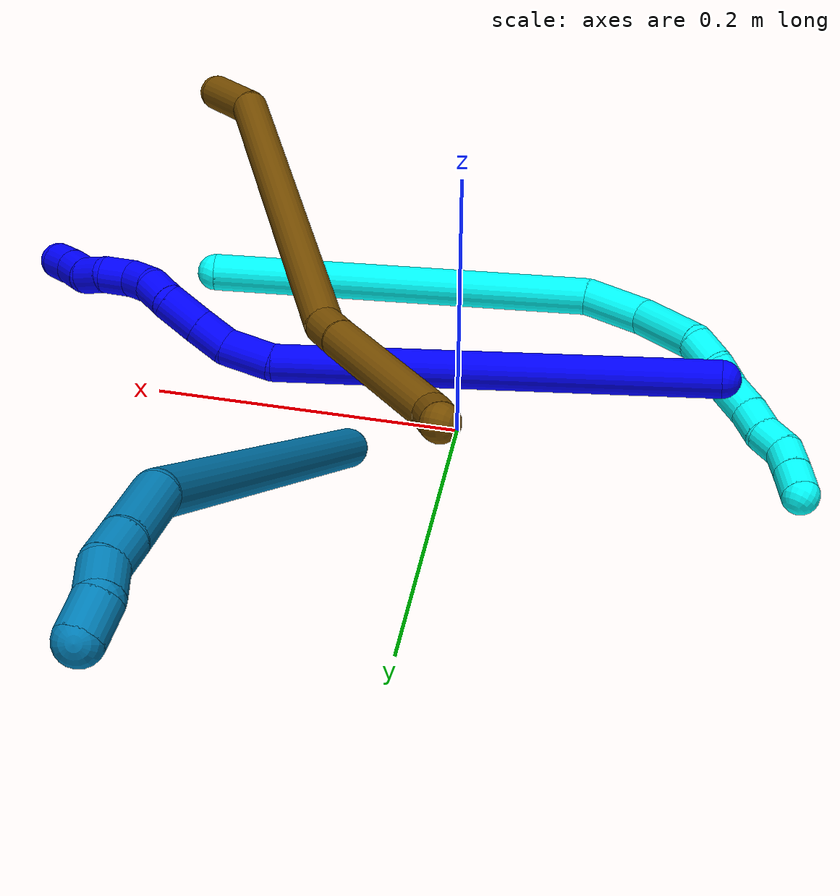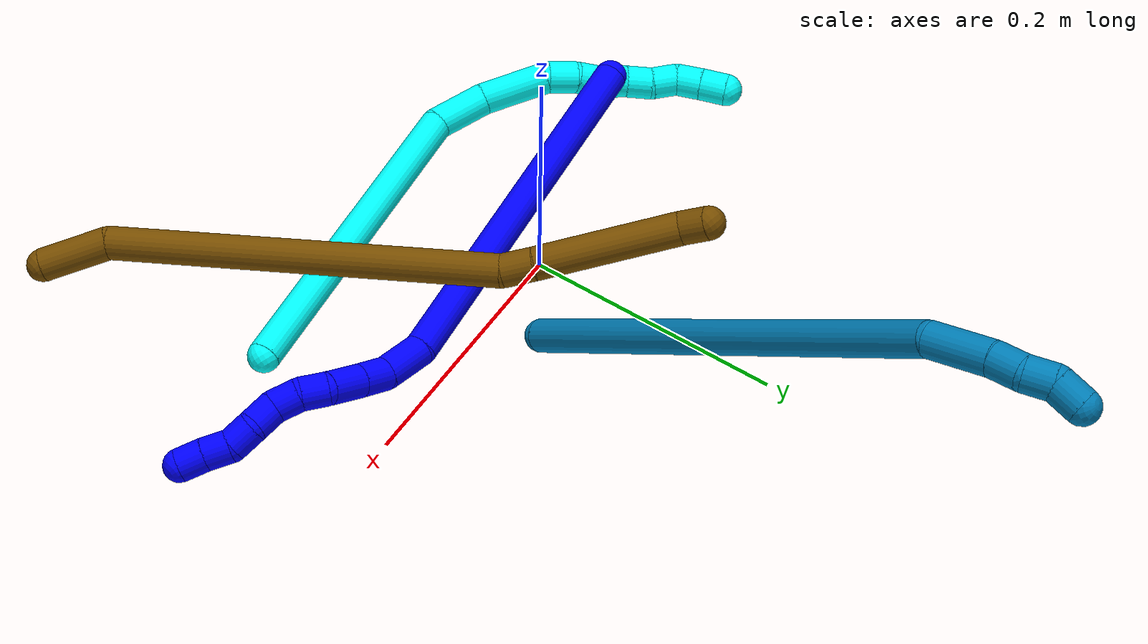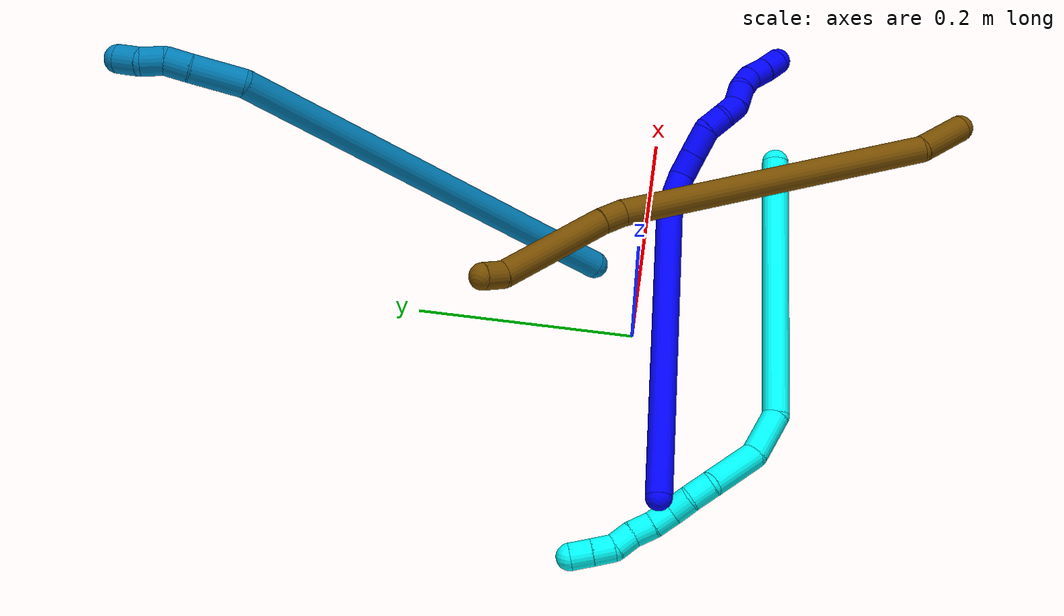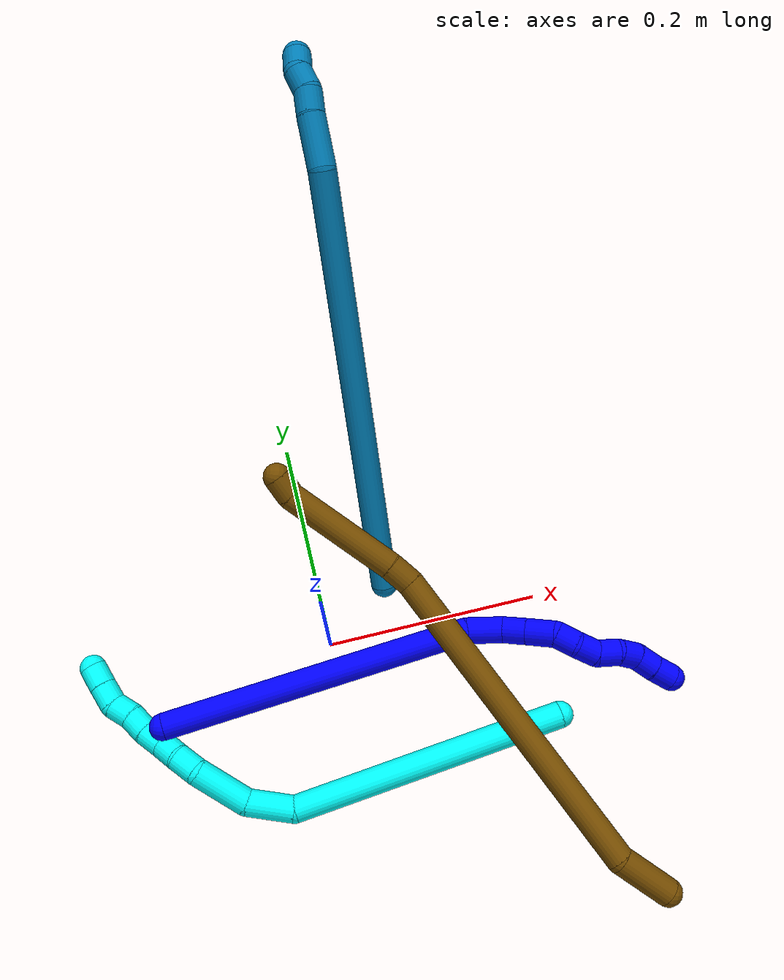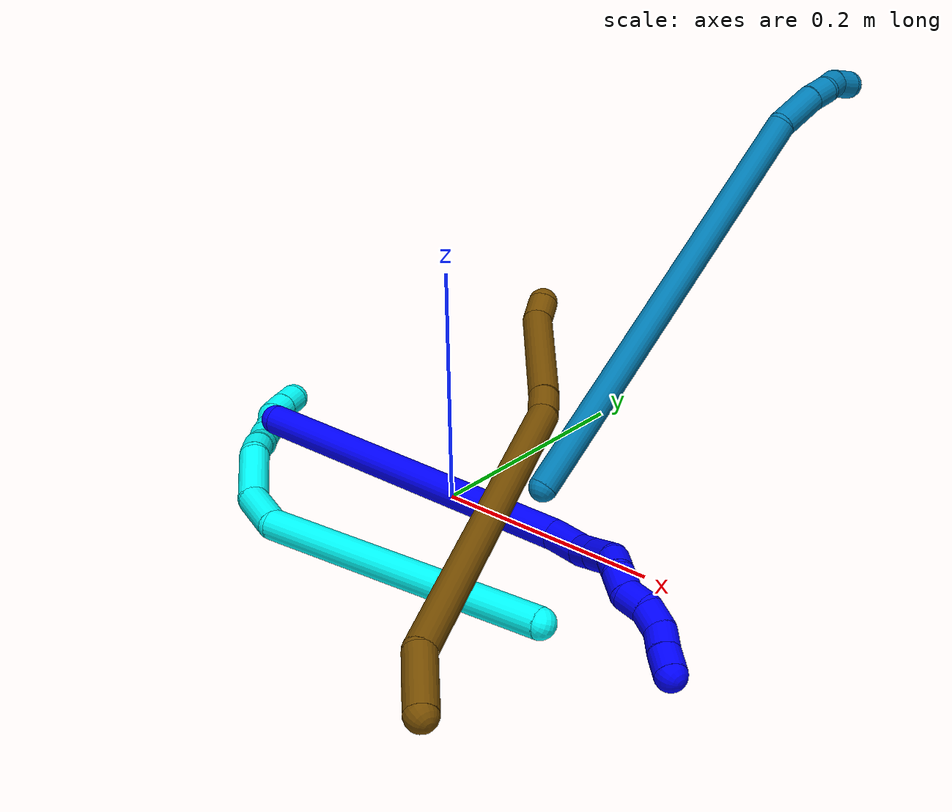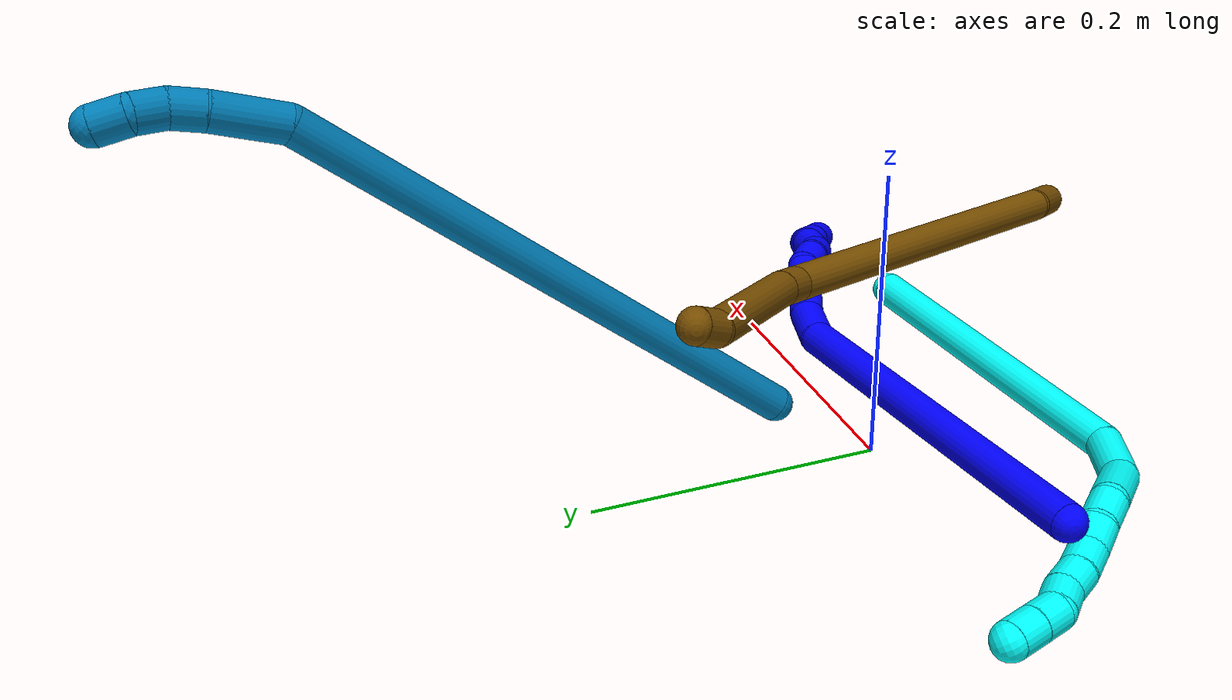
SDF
<sdf version="1.7">
 <world name="default">
  <model name="photoneo_s_sensor">
   <static>1</static>
   <pose>0 0 2 1.57079 1.57079 3.14159</pose>
   <link name="link">
    <inertial><mass>0.1</mass></inertial>
    <sensor name="sensor" type="depth">
     <update_rate>30</update_rate>
     <camera>
      <horizontal_fov>1.22</horizontal_fov>
      <image><width>1920</width><height>1200</height><format>B8G8R8</format></image>
      <clip><near>0.1</near><far>4</far></clip>
      <depth_camera><output>points</output></depth_camera>
     </camera>
     <plugin name="camera_plugin" filename="libgazebo_ros_depth_camera.so">
      <baseline>0.2</baseline>
      <alwaysOn>1</alwaysOn>
      <updateRate>0.0</updateRate>
      <cameraName>camera_ir</cameraName>
      <imageTopicName>/camera/color/image_raw</imageTopicName>
      <cameraInfoTopicName>/camera/color/camera_info</cameraInfoTopicName>
      <depthImageTopicName>/camera/depth/image_raw</depthImageTopicName>
      <depthImageCameraInfoTopicName>/camera/depth/camera_info</depthImageCameraInfoTopicName>
      <pointCloudTopicName>/camera/depth/points</pointCloudTopicName>
      <frameName>fr_optical</frameName>
      <pointCloudCutoff>0.1</pointCloudCutoff>
      <pointCloudCutoffMax>2.0</pointCloudCutoffMax>
      <distortionK1>0</distortionK1>
      <distortionK2>0</distortionK2>
      <distortionK3>0</distortionK3>
      <distortionT1>0</distortionT1>
      <distortionT2>0</distortionT2>
      <CxPrime>0</CxPrime>
      <Cx>0</Cx>
      <Cy>0</Cy>
      <focalLength>0</focalLength>
      <hackBaseline>0</hackBaseline>
     </plugin>
    </sensor>
   </link>
  </model>
  <model name="bin">
   <static>1</static>
   <link name="bottom">
    <collision name="collision-bottom">
     <pose>0 0 -0.01 0 -0 0</pose>
     <geometry><box><size>0.8 0.6 0.02</size></box></geometry>
     <surface>
      <friction><ode><mu>100</mu><mu2>100</mu2></ode></friction>
      <contact><collide_bitmask>65535</collide_bitmask></contact>
     </surface>
    </collision>
   </link>
   <link name="west_wall">
    <collision name="collision-west_wall">
     <pose>-0.41 0 0.1 0 -0 0</pose>
     <geometry><box><size>0.02 0.6 0.2</size></box></geometry>
     <surface>
      <friction><ode><mu>100</mu><mu2>100</mu2></ode></friction>
      <contact><collide_bitmask>65535</collide_bitmask></contact>
     </surface>
    </collision>
   </link>
   <link name="east_wall">
    <collision name="collision-east_wall">
     <pose>0.41 0 0.1 0 -0 0</pose>
     <geometry><box><size>0.02 0.6 0.2</size></box></geometry>
     <surface>
      <friction><ode><mu>100</mu><mu2>100</mu2></ode></friction>
      <contact><collide_bitmask>65535</collide_bitmask></contact>
     </surface>
    </collision>
   </link>
   <link name="south_wall">
    <collision name="collision-south_wall">
     <pose>0 -0.31 0.1 0 -0 0</pose>
     <geometry><box><size>0.8 0.02 0.2</size></box></geometry>
     <surface>
      <friction><ode><mu>100</mu><mu2>100</mu2></ode></friction>
      <contact><collide_bitmask>65535</collide_bitmask></contact>
     </surface>
    </collision>
   </link>
   <link name="north_wall">
    <collision name="collision-north_wall">
     <pose>0 0.31 0.1 0 -0 0</pose>
     <geometry><box><size>0.8 0.02 0.2</size></box></geometry>
     <surface>
      <friction><ode><mu>100</mu><mu2>100</mu2></ode></friction>
      <contact><collide_bitmask>65535</collide_bitmask></contact>
     </surface>
    </collision>
   </link>
  </model>
  <model name="1">
   <static>0</static>
   <link name="1">
    <collision name="collision-cylinder-e_1_1_4">
     <pose>0.04754 0.001603 0.138305 -0.01159 0.331063 -0.001936</pose>
     <geometry><cylinder><radius>0.0125</radius><length>0.292512</length></cylinder></geometry>
     <surface>
      <friction><ode><mu>1.16</mu><mu2>1.16</mu2><slip1>0</slip1><slip2>0</slip2></ode></friction>
      <contact><ode><kp>1e+06</kp><kd>1</kd><max_vel>0</max_vel><min_depth>0.001</min_depth></ode></contact>
     </surface>
    </collision>
    <visual name="visual-cylinder-e_1_1_4">
     <pose>0.04754 0.001603 0.138305 -0.01159 0.331063 -0.001936</pose>
     <geometry><cylinder><radius>0.0125</radius><length>0.292512</length></cylinder></geometry>
     <material><ambient>0 0 1 1</ambient></material>
    </visual>
    <collision name="collision-cylinder-e_2_4_5">
     <pose>0.096014 0.006111 0.293398 -0.171361 0.054723 -0.004701</pose>
     <geometry><cylinder><radius>0.0125</radius><length>0.034127</length></cylinder></geometry>
     <surface>
      <friction><ode><mu>1.16</mu><mu2>1.16</mu2><slip1>0</slip1><slip2>0</slip2></ode></friction>
      <contact><ode><kp>1e+06</kp><kd>1</kd><max_vel>0</max_vel><min_depth>0.001</min_depth></ode></contact>
     </surface>
    </collision>
    <visual name="visual-cylinder-e_2_4_5">
     <pose>0.096014 0.006111 0.293398 -0.171361 0.054723 -0.004701</pose>
     <geometry><cylinder><radius>0.0125</radius><length>0.034127</length></cylinder></geometry>
     <material><ambient>0 0 1 1</ambient></material>
    </visual>
    <collision name="collision-cylinder-e_3_5_6">
     <pose>0.096236 0.014344 0.320537 -0.475344 -0.061036 0.01479</pose>
     <geometry><cylinder><radius>0.0125</radius><length>0.023327</length></cylinder></geometry>
     <surface>
      <friction><ode><mu>1.16</mu><mu2>1.16</mu2><slip1>0</slip1><slip2>0</slip2></ode></friction>
      <contact><ode><kp>1e+06</kp><kd>1</kd><max_vel>0</max_vel><min_depth>0.001</min_depth></ode></contact>
     </surface>
    </collision>
    <visual name="visual-cylinder-e_3_5_6">
     <pose>0.096236 0.014344 0.320537 -0.475344 -0.061036 0.01479</pose>
     <geometry><cylinder><radius>0.0125</radius><length>0.023327</length></cylinder></geometry>
     <material><ambient>0 0 1 1</ambient></material>
    </visual>
    <collision name="collision-cylinder-e_4_6_7">
     <pose>0.09453 0.026206 0.34293 -0.497127 -0.072455 0.018398</pose>
     <geometry><cylinder><radius>0.0125</radius><length>0.027472</length></cylinder></geometry>
     <surface>
      <friction><ode><mu>1.16</mu><mu2>1.16</mu2><slip1>0</slip1><slip2>0</slip2></ode></friction>
      <contact><ode><kp>1e+06</kp><kd>1</kd><max_vel>0</max_vel><min_depth>0.001</min_depth></ode></contact>
     </surface>
    </collision>
    <visual name="visual-cylinder-e_4_6_7">
     <pose>0.09453 0.026206 0.34293 -0.497127 -0.072455 0.018398</pose>
     <geometry><cylinder><radius>0.0125</radius><length>0.027472</length></cylinder></geometry>
     <material><ambient>0 0 1 1</ambient></material>
    </visual>
    <collision name="collision-cylinder-e_5_7_8">
     <pose>0.089085 0.034671 0.363975 -0.211308 -0.45022 0.048559</pose>
     <geometry><cylinder><radius>0.0125</radius><length>0.020453</length></cylinder></geometry>
     <surface>
      <friction><ode><mu>1.16</mu><mu2>1.16</mu2><slip1>0</slip1><slip2>0</slip2></ode></friction>
      <contact><ode><kp>1e+06</kp><kd>1</kd><max_vel>0</max_vel><min_depth>0.001</min_depth></ode></contact>
     </surface>
    </collision>
    <visual name="visual-cylinder-e_5_7_8">
     <pose>0.089085 0.034671 0.363975 -0.211308 -0.45022 0.048559</pose>
     <geometry><cylinder><radius>0.0125</radius><length>0.020453</length></cylinder></geometry>
     <material><ambient>0 0 1 1</ambient></material>
    </visual>
    <collision name="collision-cylinder-e_6_8_9">
     <pose>0.080836 0.035483 0.382633 0.115363 -0.372576 -0.021766</pose>
     <geometry><cylinder><radius>0.0125</radius><length>0.020874</length></cylinder></geometry>
     <surface>
      <friction><ode><mu>1.16</mu><mu2>1.16</mu2><slip1>0</slip1><slip2>0</slip2></ode></friction>
      <contact><ode><kp>1e+06</kp><kd>1</kd><max_vel>0</max_vel><min_depth>0.001</min_depth></ode></contact>
     </surface>
    </collision>
    <visual name="visual-cylinder-e_6_8_9">
     <pose>0.080836 0.035483 0.382633 0.115363 -0.372576 -0.021766</pose>
     <geometry><cylinder><radius>0.0125</radius><length>0.020874</length></cylinder></geometry>
     <material><ambient>0 0 1 1</ambient></material>
    </visual>
    <collision name="collision-cylinder-e_7_9_10">
     <pose>0.078004 0.034369 0.402793 -0.000437 0.091826 -2e-05</pose>
     <geometry><cylinder><radius>0.0125</radius><length>0.021096</length></cylinder></geometry>
     <surface>
      <friction><ode><mu>1.16</mu><mu2>1.16</mu2><slip1>0</slip1><slip2>0</slip2></ode></friction>
      <contact><ode><kp>1e+06</kp><kd>1</kd><max_vel>0</max_vel><min_depth>0.001</min_depth></ode></contact>
     </surface>
    </collision>
    <visual name="visual-cylinder-e_7_9_10">
     <pose>0.078004 0.034369 0.402793 -0.000437 0.091826 -2e-05</pose>
     <geometry><cylinder><radius>0.0125</radius><length>0.021096</length></cylinder></geometry>
     <material><ambient>0 0 1 1</ambient></material>
    </visual>
    <collision name="collision-cylinder-e_8_10_11">
     <pose>0.077546 0.031514 0.422815 0.291873 -0.14245 -0.020972</pose>
     <geometry><cylinder><radius>0.0125</radius><length>0.02008</length></cylinder></geometry>
     <surface>
      <friction><ode><mu>1.16</mu><mu2>1.16</mu2><slip1>0</slip1><slip2>0</slip2></ode></friction>
      <contact><ode><kp>1e+06</kp><kd>1</kd><max_vel>0</max_vel><min_depth>0.001</min_depth></ode></contact>
     </surface>
    </collision>
    <visual name="visual-cylinder-e_8_10_11">
     <pose>0.077546 0.031514 0.422815 0.291873 -0.14245 -0.020972</pose>
     <geometry><cylinder><radius>0.0125</radius><length>0.02008</length></cylinder></geometry>
     <material><ambient>0 0 1 1</ambient></material>
    </visual>
    <collision name="collision-cylinder-e_9_11_12">
     <pose>0.070985 0.027719 0.440887 0.108919 -0.538051 -0.030057</pose>
     <geometry><cylinder><radius>0.0125</radius><length>0.020041</length></cylinder></geometry>
     <surface>
      <friction><ode><mu>1.16</mu><mu2>1.16</mu2><slip1>0</slip1><slip2>0</slip2></ode></friction>
      <contact><ode><kp>1e+06</kp><kd>1</kd><max_vel>0</max_vel><min_depth>0.001</min_depth></ode></contact>
     </surface>
    </collision>
    <visual name="visual-cylinder-e_9_11_12">
     <pose>0.070985 0.027719 0.440887 0.108919 -0.538051 -0.030057</pose>
     <geometry><cylinder><radius>0.0125</radius><length>0.020041</length></cylinder></geometry>
     <material><ambient>0 0 1 1</ambient></material>
    </visual>
    <collision name="collision-cylinder-e_10_12_2">
     <pose>0.061575 0.025608 0.458413 0.130274 -0.441338 -0.029263</pose>
     <geometry><cylinder><radius>0.0125</radius><length>0.020018</length></cylinder></geometry>
     <surface>
      <friction><ode><mu>1.16</mu><mu2>1.16</mu2><slip1>0</slip1><slip2>0</slip2></ode></friction>
      <contact><ode><kp>1e+06</kp><kd>1</kd><max_vel>0</max_vel><min_depth>0.001</min_depth></ode></contact>
     </surface>
    </collision>
    <visual name="visual-cylinder-e_10_12_2">
     <pose>0.061575 0.025608 0.458413 0.130274 -0.441338 -0.029263</pose>
     <geometry><cylinder><radius>0.0125</radius><length>0.020018</length></cylinder></geometry>
     <material><ambient>0 0 1 1</ambient></material>
    </visual>
    <collision name="collision-sphere-2">
     <pose>0.0573 0.024432 0.467387 0 -0 0</pose>
     <geometry><sphere><radius>0.0125</radius></sphere></geometry>
     <surface>
      <friction><ode><mu>1.16</mu><mu2>1.16</mu2><slip1>0</slip1><slip2>0</slip2></ode></friction>
      <contact><ode><kp>1e+06</kp><kd>1</kd><max_vel>0</max_vel><min_depth>0.001</min_depth></ode></contact>
     </surface>
    </collision>
    <visual name="visual-sphere-2">
     <pose>0.0573 0.024432 0.467387 0 -0 0</pose>
     <geometry><sphere><radius>0.0125</radius></sphere></geometry>
     <material><ambient>0 0 1 1</ambient></material>
    </visual>
    <collision name="collision-sphere-12">
     <pose>0.06585 0.026783 0.44944 0 -0 0</pose>
     <geometry><sphere><radius>0.0125</radius></sphere></geometry>
     <surface>
      <friction><ode><mu>1.16</mu><mu2>1.16</mu2><slip1>0</slip1><slip2>0</slip2></ode></friction>
      <contact><ode><kp>1e+06</kp><kd>1</kd><max_vel>0</max_vel><min_depth>0.001</min_depth></ode></contact>
     </surface>
    </collision>
    <visual name="visual-sphere-12">
     <pose>0.06585 0.026783 0.44944 0 -0 0</pose>
     <geometry><sphere><radius>0.0125</radius></sphere></geometry>
     <material><ambient>0 0 1 1</ambient></material>
    </visual>
    <collision name="collision-sphere-11">
     <pose>0.07612 0.028654 0.432333 0 -0 0</pose>
     <geometry><sphere><radius>0.0125</radius></sphere></geometry>
     <surface>
      <friction><ode><mu>1.16</mu><mu2>1.16</mu2><slip1>0</slip1><slip2>0</slip2></ode></friction>
      <contact><ode><kp>1e+06</kp><kd>1</kd><max_vel>0</max_vel><min_depth>0.001</min_depth></ode></contact>
     </surface>
    </collision>
    <visual name="visual-sphere-11">
     <pose>0.07612 0.028654 0.432333 0 -0 0</pose>
     <geometry><sphere><radius>0.0125</radius></sphere></geometry>
     <material><ambient>0 0 1 1</ambient></material>
    </visual>
    <collision name="collision-sphere-10">
     <pose>0.078971 0.034373 0.413297 0 -0 0</pose>
     <geometry><sphere><radius>0.0125</radius></sphere></geometry>
     <surface>
      <friction><ode><mu>1.16</mu><mu2>1.16</mu2><slip1>0</slip1><slip2>0</slip2></ode></friction>
      <contact><ode><kp>1e+06</kp><kd>1</kd><max_vel>0</max_vel><min_depth>0.001</min_depth></ode></contact>
     </surface>
    </collision>
    <visual name="visual-sphere-10">
     <pose>0.078971 0.034373 0.413297 0 -0 0</pose>
     <geometry><sphere><radius>0.0125</radius></sphere></geometry>
     <material><ambient>0 0 1 1</ambient></material>
    </visual>
    <collision name="collision-sphere-9">
     <pose>0.077037 0.034364 0.39229 0 -0 0</pose>
     <geometry><sphere><radius>0.0125</radius></sphere></geometry>
     <surface>
      <friction><ode><mu>1.16</mu><mu2>1.16</mu2><slip1>0</slip1><slip2>0</slip2></ode></friction>
      <contact><ode><kp>1e+06</kp><kd>1</kd><max_vel>0</max_vel><min_depth>0.001</min_depth></ode></contact>
     </surface>
    </collision>
    <visual name="visual-sphere-9">
     <pose>0.077037 0.034364 0.39229 0 -0 0</pose>
     <geometry><sphere><radius>0.0125</radius></sphere></geometry>
     <material><ambient>0 0 1 1</ambient></material>
    </visual>
    <collision name="collision-sphere-4">
     <pose>0.095081 0.003206 0.276609 0 -0 0</pose>
     <geometry><sphere><radius>0.0125</radius></sphere></geometry>
     <surface>
      <friction><ode><mu>1.16</mu><mu2>1.16</mu2><slip1>0</slip1><slip2>0</slip2></ode></friction>
      <contact><ode><kp>1e+06</kp><kd>1</kd><max_vel>0</max_vel><min_depth>0.001</min_depth></ode></contact>
     </surface>
    </collision>
    <visual name="visual-sphere-4">
     <pose>0.095081 0.003206 0.276609 0 -0 0</pose>
     <geometry><sphere><radius>0.0125</radius></sphere></geometry>
     <material><ambient>0 0 1 1</ambient></material>
    </visual>
    <collision name="collision-sphere-1">
     <geometry><sphere><radius>0.0125</radius></sphere></geometry>
     <surface>
      <friction><ode><mu>1.16</mu><mu2>1.16</mu2><slip1>0</slip1><slip2>0</slip2></ode></friction>
      <contact><ode><kp>1e+06</kp><kd>1</kd><max_vel>0</max_vel><min_depth>0.001</min_depth></ode></contact>
     </surface>
    </collision>
    <visual name="visual-sphere-1">
     <geometry><sphere><radius>0.0125</radius></sphere></geometry>
     <material><ambient>0 0 1 1</ambient></material>
    </visual>
    <collision name="collision-sphere-8">
     <pose>0.084635 0.036602 0.372977 0 -0 0</pose>
     <geometry><sphere><radius>0.0125</radius></sphere></geometry>
     <surface>
      <friction><ode><mu>1.16</mu><mu2>1.16</mu2><slip1>0</slip1><slip2>0</slip2></ode></friction>
      <contact><ode><kp>1e+06</kp><kd>1</kd><max_vel>0</max_vel><min_depth>0.001</min_depth></ode></contact>
     </surface>
    </collision>
    <visual name="visual-sphere-8">
     <pose>0.084635 0.036602 0.372977 0 -0 0</pose>
     <geometry><sphere><radius>0.0125</radius></sphere></geometry>
     <material><ambient>0 0 1 1</ambient></material>
    </visual>
    <collision name="collision-sphere-5">
     <pose>0.096947 0.009017 0.310186 0 -0 0</pose>
     <geometry><sphere><radius>0.0125</radius></sphere></geometry>
     <surface>
      <friction><ode><mu>1.16</mu><mu2>1.16</mu2><slip1>0</slip1><slip2>0</slip2></ode></friction>
      <contact><ode><kp>1e+06</kp><kd>1</kd><max_vel>0</max_vel><min_depth>0.001</min_depth></ode></contact>
     </surface>
    </collision>
    <visual name="visual-sphere-5">
     <pose>0.096947 0.009017 0.310186 0 -0 0</pose>
     <geometry><sphere><radius>0.0125</radius></sphere></geometry>
     <material><ambient>0 0 1 1</ambient></material>
    </visual>
    <collision name="collision-sphere-6">
     <pose>0.095524 0.019672 0.330888 0 -0 0</pose>
     <geometry><sphere><radius>0.0125</radius></sphere></geometry>
     <surface>
      <friction><ode><mu>1.16</mu><mu2>1.16</mu2><slip1>0</slip1><slip2>0</slip2></ode></friction>
      <contact><ode><kp>1e+06</kp><kd>1</kd><max_vel>0</max_vel><min_depth>0.001</min_depth></ode></contact>
     </surface>
    </collision>
    <visual name="visual-sphere-6">
     <pose>0.095524 0.019672 0.330888 0 -0 0</pose>
     <geometry><sphere><radius>0.0125</radius></sphere></geometry>
     <material><ambient>0 0 1 1</ambient></material>
    </visual>
    <collision name="collision-sphere-7">
     <pose>0.093536 0.03274 0.354972 0 -0 0</pose>
     <geometry><sphere><radius>0.0125</radius></sphere></geometry>
     <surface>
      <friction><ode><mu>1.16</mu><mu2>1.16</mu2><slip1>0</slip1><slip2>0</slip2></ode></friction>
      <contact><ode><kp>1e+06</kp><kd>1</kd><max_vel>0</max_vel><min_depth>0.001</min_depth></ode></contact>
     </surface>
    </collision>
    <visual name="visual-sphere-7">
     <pose>0.093536 0.03274 0.354972 0 -0 0</pose>
     <geometry><sphere><radius>0.0125</radius></sphere></geometry>
     <material><ambient>0 0 1 1</ambient></material>
    </visual>
    <inertial>
     <pose>0.062784 0.011215 0.235596 0 -0 0</pose>
     <mass>0.5</mass>
     <inertia>
      <ixx>0.002002</ixx>
      <ixy>0</ixy>
      <ixz>0</ixz>
      <iyy>0.002113</iyy>
      <iyz>0</iyz>
      <izz>-0.000668</izz>
     </inertia>
    </inertial>
   </link>
   <pose>-0.164016 -0.043023 0.035719 1.69335 -0.150392 1.30485</pose>
  </model>
  <model name="3">
   <static>0</static>
   <link name="3">
    <collision name="collision-cylinder-e_1_1_4">
     <pose>-0.118309 0.014249 0.049085 -0.282535 -1.163 0.186417</pose>
     <geometry><cylinder><radius>0.0125</radius><length>0.257754</length></cylinder></geometry>
     <surface>
      <friction><ode><mu>1.16</mu><mu2>1.16</mu2><slip1>0</slip1><slip2>0</slip2></ode></friction>
      <contact><ode><kp>1e+06</kp><kd>1</kd><max_vel>0</max_vel><min_depth>0.001</min_depth></ode></contact>
     </surface>
    </collision>
    <visual name="visual-cylinder-e_1_1_4">
     <pose>-0.118309 0.014249 0.049085 -0.282535 -1.163 0.186417</pose>
     <geometry><cylinder><radius>0.0125</radius><length>0.257754</length></cylinder></geometry>
     <material><ambient>0.003922 1 0.996078 1</ambient></material>
    </visual>
    <collision name="collision-cylinder-e_2_4_5">
     <pose>-0.25705 0.036695 0.098022 -1.58889 -1.18926 1.20611</pose>
     <geometry><cylinder><radius>0.0125</radius><length>0.044031</length></cylinder></geometry>
     <surface>
      <friction><ode><mu>1.16</mu><mu2>1.16</mu2><slip1>0</slip1><slip2>0</slip2></ode></friction>
      <contact><ode><kp>1e+06</kp><kd>1</kd><max_vel>0</max_vel><min_depth>0.001</min_depth></ode></contact>
     </surface>
    </collision>
    <visual name="visual-cylinder-e_2_4_5">
     <pose>-0.25705 0.036695 0.098022 -1.58889 -1.18926 1.20611</pose>
     <geometry><cylinder><radius>0.0125</radius><length>0.044031</length></cylinder></geometry>
     <material><ambient>0.003922 1 0.996078 1</ambient></material>
    </visual>
    <collision name="collision-cylinder-e_3_5_6">
     <pose>-0.296016 0.063023 0.091888 -1.88964 -0.770513 1.02236</pose>
     <geometry><cylinder><radius>0.0125</radius><length>0.05322</length></cylinder></geometry>
     <surface>
      <friction><ode><mu>1.16</mu><mu2>1.16</mu2><slip1>0</slip1><slip2>0</slip2></ode></friction>
      <contact><ode><kp>1e+06</kp><kd>1</kd><max_vel>0</max_vel><min_depth>0.001</min_depth></ode></contact>
     </surface>
    </collision>
    <visual name="visual-cylinder-e_3_5_6">
     <pose>-0.296016 0.063023 0.091888 -1.88964 -0.770513 1.02236</pose>
     <geometry><cylinder><radius>0.0125</radius><length>0.05322</length></cylinder></geometry>
     <material><ambient>0.003922 1 0.996078 1</ambient></material>
    </visual>
    <collision name="collision-cylinder-e_4_6_7">
     <pose>-0.323456 0.085697 0.080314 -2.45907 -0.890805 1.86236</pose>
     <geometry><cylinder><radius>0.0125</radius><length>0.022905</length></cylinder></geometry>
     <surface>
      <friction><ode><mu>1.16</mu><mu2>1.16</mu2><slip1>0</slip1><slip2>0</slip2></ode></friction>
      <contact><ode><kp>1e+06</kp><kd>1</kd><max_vel>0</max_vel><min_depth>0.001</min_depth></ode></contact>
     </surface>
    </collision>
    <visual name="visual-cylinder-e_4_6_7">
     <pose>-0.323456 0.085697 0.080314 -2.45907 -0.890805 1.86236</pose>
     <geometry><cylinder><radius>0.0125</radius><length>0.022905</length></cylinder></geometry>
     <material><ambient>0.003922 1 0.996078 1</ambient></material>
    </visual>
    <collision name="collision-cylinder-e_5_7_8">
     <pose>-0.340398 0.092194 0.068848 -2.82039 -0.914156 2.50521</pose>
     <geometry><cylinder><radius>0.0125</radius><length>0.020295</length></cylinder></geometry>
     <surface>
      <friction><ode><mu>1.16</mu><mu2>1.16</mu2><slip1>0</slip1><slip2>0</slip2></ode></friction>
      <contact><ode><kp>1e+06</kp><kd>1</kd><max_vel>0</max_vel><min_depth>0.001</min_depth></ode></contact>
     </surface>
    </collision>
    <visual name="visual-cylinder-e_5_7_8">
     <pose>-0.340398 0.092194 0.068848 -2.82039 -0.914156 2.50521</pose>
     <geometry><cylinder><radius>0.0125</radius><length>0.020295</length></cylinder></geometry>
     <material><ambient>0.003922 1 0.996078 1</ambient></material>
    </visual>
    <collision name="collision-cylinder-e_6_8_9">
     <pose>-0.356575 0.098494 0.057946 -2.42872 -0.886353 1.81125</pose>
     <geometry><cylinder><radius>0.0125</radius><length>0.021012</length></cylinder></geometry>
     <surface>
      <friction><ode><mu>1.16</mu><mu2>1.16</mu2><slip1>0</slip1><slip2>0</slip2></ode></friction>
      <contact><ode><kp>1e+06</kp><kd>1</kd><max_vel>0</max_vel><min_depth>0.001</min_depth></ode></contact>
     </surface>
    </collision>
    <visual name="visual-cylinder-e_6_8_9">
     <pose>-0.356575 0.098494 0.057946 -2.42872 -0.886353 1.81125</pose>
     <geometry><cylinder><radius>0.0125</radius><length>0.021012</length></cylinder></geometry>
     <material><ambient>0.003922 1 0.996078 1</ambient></material>
    </visual>
    <collision name="collision-cylinder-e_7_9_10">
     <pose>-0.371459 0.107627 0.047038 -2.45838 -0.726726 1.63792</pose>
     <geometry><cylinder><radius>0.0125</radius><length>0.0203</length></cylinder></geometry>
     <surface>
      <friction><ode><mu>1.16</mu><mu2>1.16</mu2><slip1>0</slip1><slip2>0</slip2></ode></friction>
      <contact><ode><kp>1e+06</kp><kd>1</kd><max_vel>0</max_vel><min_depth>0.001</min_depth></ode></contact>
     </surface>
    </collision>
    <visual name="visual-cylinder-e_7_9_10">
     <pose>-0.371459 0.107627 0.047038 -2.45838 -0.726726 1.63792</pose>
     <geometry><cylinder><radius>0.0125</radius><length>0.0203</length></cylinder></geometry>
     <material><ambient>0.003922 1 0.996078 1</ambient></material>
    </visual>
    <collision name="collision-cylinder-e_8_10_11">
     <pose>-0.386198 0.117433 0.037546 -2.19429 -0.912708 1.52765</pose>
     <geometry><cylinder><radius>0.0125</radius><length>0.02021</length></cylinder></geometry>
     <surface>
      <friction><ode><mu>1.16</mu><mu2>1.16</mu2><slip1>0</slip1><slip2>0</slip2></ode></friction>
      <contact><ode><kp>1e+06</kp><kd>1</kd><max_vel>0</max_vel><min_depth>0.001</min_depth></ode></contact>
     </surface>
    </collision>
    <visual name="visual-cylinder-e_8_10_11">
     <pose>-0.386198 0.117433 0.037546 -2.19429 -0.912708 1.52765</pose>
     <geometry><cylinder><radius>0.0125</radius><length>0.02021</length></cylinder></geometry>
     <material><ambient>0.003922 1 0.996078 1</ambient></material>
    </visual>
    <collision name="collision-cylinder-e_9_11_12">
     <pose>-0.399009 0.128027 0.02711 -2.45671 -0.500071 1.24327</pose>
     <geometry><cylinder><radius>0.0125</radius><length>0.020091</length></cylinder></geometry>
     <surface>
      <friction><ode><mu>1.16</mu><mu2>1.16</mu2><slip1>0</slip1><slip2>0</slip2></ode></friction>
      <contact><ode><kp>1e+06</kp><kd>1</kd><max_vel>0</max_vel><min_depth>0.001</min_depth></ode></contact>
     </surface>
    </collision>
    <visual name="visual-cylinder-e_9_11_12">
     <pose>-0.399009 0.128027 0.02711 -2.45671 -0.500071 1.24327</pose>
     <geometry><cylinder><radius>0.0125</radius><length>0.020091</length></cylinder></geometry>
     <material><ambient>0.003922 1 0.996078 1</ambient></material>
    </visual>
    <collision name="collision-cylinder-e_10_12_2">
     <pose>-0.408558 0.138997 0.013188 -2.49156 -0.488146 1.27293</pose>
     <geometry><cylinder><radius>0.0125</radius><length>0.020182</length></cylinder></geometry>
     <surface>
      <friction><ode><mu>1.16</mu><mu2>1.16</mu2><slip1>0</slip1><slip2>0</slip2></ode></friction>
      <contact><ode><kp>1e+06</kp><kd>1</kd><max_vel>0</max_vel><min_depth>0.001</min_depth></ode></contact>
     </surface>
    </collision>
    <visual name="visual-cylinder-e_10_12_2">
     <pose>-0.408558 0.138997 0.013188 -2.49156 -0.488146 1.27293</pose>
     <geometry><cylinder><radius>0.0125</radius><length>0.020182</length></cylinder></geometry>
     <material><ambient>0.003922 1 0.996078 1</ambient></material>
    </visual>
    <collision name="collision-sphere-2">
     <pose>-0.41329 0.144391 0.006094 0 -0 0</pose>
     <geometry><sphere><radius>0.0125</radius></sphere></geometry>
     <surface>
      <friction><ode><mu>1.16</mu><mu2>1.16</mu2><slip1>0</slip1><slip2>0</slip2></ode></friction>
      <contact><ode><kp>1e+06</kp><kd>1</kd><max_vel>0</max_vel><min_depth>0.001</min_depth></ode></contact>
     </surface>
    </collision>
    <visual name="visual-sphere-2">
     <pose>-0.41329 0.144391 0.006094 0 -0 0</pose>
     <geometry><sphere><radius>0.0125</radius></sphere></geometry>
     <material><ambient>0.003922 1 0.996078 1</ambient></material>
    </visual>
    <collision name="collision-sphere-12">
     <pose>-0.403825 0.133603 0.020283 0 -0 0</pose>
     <geometry><sphere><radius>0.0125</radius></sphere></geometry>
     <surface>
      <friction><ode><mu>1.16</mu><mu2>1.16</mu2><slip1>0</slip1><slip2>0</slip2></ode></friction>
      <contact><ode><kp>1e+06</kp><kd>1</kd><max_vel>0</max_vel><min_depth>0.001</min_depth></ode></contact>
     </surface>
    </collision>
    <visual name="visual-sphere-12">
     <pose>-0.403825 0.133603 0.020283 0 -0 0</pose>
     <geometry><sphere><radius>0.0125</radius></sphere></geometry>
     <material><ambient>0.003922 1 0.996078 1</ambient></material>
    </visual>
    <collision name="collision-sphere-11">
     <pose>-0.394192 0.122451 0.033938 0 -0 0</pose>
     <geometry><sphere><radius>0.0125</radius></sphere></geometry>
     <surface>
      <friction><ode><mu>1.16</mu><mu2>1.16</mu2><slip1>0</slip1><slip2>0</slip2></ode></friction>
      <contact><ode><kp>1e+06</kp><kd>1</kd><max_vel>0</max_vel><min_depth>0.001</min_depth></ode></contact>
     </surface>
    </collision>
    <visual name="visual-sphere-11">
     <pose>-0.394192 0.122451 0.033938 0 -0 0</pose>
     <geometry><sphere><radius>0.0125</radius></sphere></geometry>
     <material><ambient>0.003922 1 0.996078 1</ambient></material>
    </visual>
    <collision name="collision-sphere-10">
     <pose>-0.378203 0.112416 0.041155 0 -0 0</pose>
     <geometry><sphere><radius>0.0125</radius></sphere></geometry>
     <surface>
      <friction><ode><mu>1.16</mu><mu2>1.16</mu2><slip1>0</slip1><slip2>0</slip2></ode></friction>
      <contact><ode><kp>1e+06</kp><kd>1</kd><max_vel>0</max_vel><min_depth>0.001</min_depth></ode></contact>
     </surface>
    </collision>
    <visual name="visual-sphere-10">
     <pose>-0.378203 0.112416 0.041155 0 -0 0</pose>
     <geometry><sphere><radius>0.0125</radius></sphere></geometry>
     <material><ambient>0.003922 1 0.996078 1</ambient></material>
    </visual>
    <collision name="collision-sphere-9">
     <pose>-0.364715 0.102838 0.052921 0 -0 0</pose>
     <geometry><sphere><radius>0.0125</radius></sphere></geometry>
     <surface>
      <friction><ode><mu>1.16</mu><mu2>1.16</mu2><slip1>0</slip1><slip2>0</slip2></ode></friction>
      <contact><ode><kp>1e+06</kp><kd>1</kd><max_vel>0</max_vel><min_depth>0.001</min_depth></ode></contact>
     </surface>
    </collision>
    <visual name="visual-sphere-9">
     <pose>-0.364715 0.102838 0.052921 0 -0 0</pose>
     <geometry><sphere><radius>0.0125</radius></sphere></geometry>
     <material><ambient>0.003922 1 0.996078 1</ambient></material>
    </visual>
    <collision name="collision-sphere-4">
     <pose>-0.236617 0.028499 0.09817 0 -0 0</pose>
     <geometry><sphere><radius>0.0125</radius></sphere></geometry>
     <surface>
      <friction><ode><mu>1.16</mu><mu2>1.16</mu2><slip1>0</slip1><slip2>0</slip2></ode></friction>
      <contact><ode><kp>1e+06</kp><kd>1</kd><max_vel>0</max_vel><min_depth>0.001</min_depth></ode></contact>
     </surface>
    </collision>
    <visual name="visual-sphere-4">
     <pose>-0.236617 0.028499 0.09817 0 -0 0</pose>
     <geometry><sphere><radius>0.0125</radius></sphere></geometry>
     <material><ambient>0.003922 1 0.996078 1</ambient></material>
    </visual>
    <collision name="collision-sphere-1">
     <geometry><sphere><radius>0.0125</radius></sphere></geometry>
     <surface>
      <friction><ode><mu>1.16</mu><mu2>1.16</mu2><slip1>0</slip1><slip2>0</slip2></ode></friction>
      <contact><ode><kp>1e+06</kp><kd>1</kd><max_vel>0</max_vel><min_depth>0.001</min_depth></ode></contact>
     </surface>
    </collision>
    <visual name="visual-sphere-1">
     <geometry><sphere><radius>0.0125</radius></sphere></geometry>
     <material><ambient>0.003922 1 0.996078 1</ambient></material>
    </visual>
    <collision name="collision-sphere-8">
     <pose>-0.348436 0.09415 0.062971 0 -0 0</pose>
     <geometry><sphere><radius>0.0125</radius></sphere></geometry>
     <surface>
      <friction><ode><mu>1.16</mu><mu2>1.16</mu2><slip1>0</slip1><slip2>0</slip2></ode></friction>
      <contact><ode><kp>1e+06</kp><kd>1</kd><max_vel>0</max_vel><min_depth>0.001</min_depth></ode></contact>
     </surface>
    </collision>
    <visual name="visual-sphere-8">
     <pose>-0.348436 0.09415 0.062971 0 -0 0</pose>
     <geometry><sphere><radius>0.0125</radius></sphere></geometry>
     <material><ambient>0.003922 1 0.996078 1</ambient></material>
    </visual>
    <collision name="collision-sphere-5">
     <pose>-0.277482 0.044891 0.097873 0 -0 0</pose>
     <geometry><sphere><radius>0.0125</radius></sphere></geometry>
     <surface>
      <friction><ode><mu>1.16</mu><mu2>1.16</mu2><slip1>0</slip1><slip2>0</slip2></ode></friction>
      <contact><ode><kp>1e+06</kp><kd>1</kd><max_vel>0</max_vel><min_depth>0.001</min_depth></ode></contact>
     </surface>
    </collision>
    <visual name="visual-sphere-5">
     <pose>-0.277482 0.044891 0.097873 0 -0 0</pose>
     <geometry><sphere><radius>0.0125</radius></sphere></geometry>
     <material><ambient>0.003922 1 0.996078 1</ambient></material>
    </visual>
    <collision name="collision-sphere-6">
     <pose>-0.31455 0.081154 0.085902 0 -0 0</pose>
     <geometry><sphere><radius>0.0125</radius></sphere></geometry>
     <surface>
      <friction><ode><mu>1.16</mu><mu2>1.16</mu2><slip1>0</slip1><slip2>0</slip2></ode></friction>
      <contact><ode><kp>1e+06</kp><kd>1</kd><max_vel>0</max_vel><min_depth>0.001</min_depth></ode></contact>
     </surface>
    </collision>
    <visual name="visual-sphere-6">
     <pose>-0.31455 0.081154 0.085902 0 -0 0</pose>
     <geometry><sphere><radius>0.0125</radius></sphere></geometry>
     <material><ambient>0.003922 1 0.996078 1</ambient></material>
    </visual>
    <collision name="collision-sphere-7">
     <pose>-0.332361 0.090239 0.074726 0 -0 0</pose>
     <geometry><sphere><radius>0.0125</radius></sphere></geometry>
     <surface>
      <friction><ode><mu>1.16</mu><mu2>1.16</mu2><slip1>0</slip1><slip2>0</slip2></ode></friction>
      <contact><ode><kp>1e+06</kp><kd>1</kd><max_vel>0</max_vel><min_depth>0.001</min_depth></ode></contact>
     </surface>
    </collision>
    <visual name="visual-sphere-7">
     <pose>-0.332361 0.090239 0.074726 0 -0 0</pose>
     <geometry><sphere><radius>0.0125</radius></sphere></geometry>
     <material><ambient>0.003922 1 0.996078 1</ambient></material>
    </visual>
    <inertial>
     <pose>-0.221967 0.048963 0.057674 0 -0 0</pose>
     <mass>0.5</mass>
     <inertia>
      <ixx>0.000659</ixx>
      <ixy>0</ixy>
      <ixz>0</ixz>
      <iyy>0.001579</iyy>
      <iyz>0</iyz>
      <izz>0.001169</izz>
     </inertia>
    </inertial>
   </link>
   <pose>0.191801 -0.114797 0.012503 1.05209 -0.30364 -0.182617</pose>
  </model>
  <model name="9">
   <static>0</static>
   <link name="9">
    <collision name="collision-cylinder-e_1_1_4">
     <pose>0.032276 0.003917 0.191883 -0.020411 0.166613 -0.001704</pose>
     <geometry><cylinder><radius>0.0125</radius><length>0.389237</length></cylinder></geometry>
     <surface>
      <friction><ode><mu>1.16</mu><mu2>1.16</mu2><slip1>0</slip1><slip2>0</slip2></ode></friction>
      <contact><ode><kp>1e+06</kp><kd>1</kd><max_vel>0</max_vel><min_depth>0.001</min_depth></ode></contact>
     </surface>
    </collision>
    <visual name="visual-cylinder-e_1_1_4">
     <pose>0.032276 0.003917 0.191883 -0.020411 0.166613 -0.001704</pose>
     <geometry><cylinder><radius>0.0125</radius><length>0.389237</length></cylinder></geometry>
     <material><ambient>0 0.490196 0.709804 1</ambient></material>
    </visual>
    <collision name="collision-cylinder-e_2_4_5">
     <pose>0.067828 0.016796 0.405192 -0.396165 0.140116 -0.028168</pose>
     <geometry><cylinder><radius>0.0125</radius><length>0.046907</length></cylinder></geometry>
     <surface>
      <friction><ode><mu>1.16</mu><mu2>1.16</mu2><slip1>0</slip1><slip2>0</slip2></ode></friction>
      <contact><ode><kp>1e+06</kp><kd>1</kd><max_vel>0</max_vel><min_depth>0.001</min_depth></ode></contact>
     </surface>
    </collision>
    <visual name="visual-cylinder-e_2_4_5">
     <pose>0.067828 0.016796 0.405192 -0.396165 0.140116 -0.028168</pose>
     <geometry><cylinder><radius>0.0125</radius><length>0.046907</length></cylinder></geometry>
     <material><ambient>0 0.490196 0.709804 1</ambient></material>
    </visual>
    <collision name="collision-cylinder-e_3_5_6">
     <pose>0.073458 0.031012 0.435901 -0.515026 0.217266 -0.057429</pose>
     <geometry><cylinder><radius>0.0125</radius><length>0.021851</length></cylinder></geometry>
     <surface>
      <friction><ode><mu>1.16</mu><mu2>1.16</mu2><slip1>0</slip1><slip2>0</slip2></ode></friction>
      <contact><ode><kp>1e+06</kp><kd>1</kd><max_vel>0</max_vel><min_depth>0.001</min_depth></ode></contact>
     </surface>
    </collision>
    <visual name="visual-cylinder-e_3_5_6">
     <pose>0.073458 0.031012 0.435901 -0.515026 0.217266 -0.057429</pose>
     <geometry><cylinder><radius>0.0125</radius><length>0.021851</length></cylinder></geometry>
     <material><ambient>0 0.490196 0.709804 1</ambient></material>
    </visual>
    <collision name="collision-cylinder-e_4_6_7">
     <pose>0.074884 0.042575 0.453302 -0.660672 -0.090171 0.030938</pose>
     <geometry><cylinder><radius>0.0125</radius><length>0.020641</length></cylinder></geometry>
     <surface>
      <friction><ode><mu>1.16</mu><mu2>1.16</mu2><slip1>0</slip1><slip2>0</slip2></ode></friction>
      <contact><ode><kp>1e+06</kp><kd>1</kd><max_vel>0</max_vel><min_depth>0.001</min_depth></ode></contact>
     </surface>
    </collision>
    <visual name="visual-cylinder-e_4_6_7">
     <pose>0.074884 0.042575 0.453302 -0.660672 -0.090171 0.030938</pose>
     <geometry><cylinder><radius>0.0125</radius><length>0.020641</length></cylinder></geometry>
     <material><ambient>0 0.490196 0.709804 1</ambient></material>
    </visual>
    <collision name="collision-cylinder-e_5_7_2">
     <pose>0.07644 0.057377 0.467398 -0.957366 0.234785 -0.122249</pose>
     <geometry><cylinder><radius>0.0125</radius><length>0.021364</length></cylinder></geometry>
     <surface>
      <friction><ode><mu>1.16</mu><mu2>1.16</mu2><slip1>0</slip1><slip2>0</slip2></ode></friction>
      <contact><ode><kp>1e+06</kp><kd>1</kd><max_vel>0</max_vel><min_depth>0.001</min_depth></ode></contact>
     </surface>
    </collision>
    <visual name="visual-cylinder-e_5_7_2">
     <pose>0.07644 0.057377 0.467398 -0.957366 0.234785 -0.122249</pose>
     <geometry><cylinder><radius>0.0125</radius><length>0.021364</length></cylinder></geometry>
     <material><ambient>0 0.490196 0.709804 1</ambient></material>
    </visual>
    <collision name="collision-sphere-2">
     <pose>0.078925 0.065872 0.473379 0 -0 0</pose>
     <geometry><sphere><radius>0.0125</radius></sphere></geometry>
     <surface>
      <friction><ode><mu>1.16</mu><mu2>1.16</mu2><slip1>0</slip1><slip2>0</slip2></ode></friction>
      <contact><ode><kp>1e+06</kp><kd>1</kd><max_vel>0</max_vel><min_depth>0.001</min_depth></ode></contact>
     </surface>
    </collision>
    <visual name="visual-sphere-2">
     <pose>0.078925 0.065872 0.473379 0 -0 0</pose>
     <geometry><sphere><radius>0.0125</radius></sphere></geometry>
     <material><ambient>0 0.490196 0.709804 1</ambient></material>
    </visual>
    <collision name="collision-sphere-7">
     <pose>0.073955 0.048882 0.461417 0 -0 0</pose>
     <geometry><sphere><radius>0.0125</radius></sphere></geometry>
     <surface>
      <friction><ode><mu>1.16</mu><mu2>1.16</mu2><slip1>0</slip1><slip2>0</slip2></ode></friction>
      <contact><ode><kp>1e+06</kp><kd>1</kd><max_vel>0</max_vel><min_depth>0.001</min_depth></ode></contact>
     </surface>
    </collision>
    <visual name="visual-sphere-7">
     <pose>0.073955 0.048882 0.461417 0 -0 0</pose>
     <geometry><sphere><radius>0.0125</radius></sphere></geometry>
     <material><ambient>0 0.490196 0.709804 1</ambient></material>
    </visual>
    <collision name="collision-sphere-6">
     <pose>0.075813 0.036267 0.445186 0 -0 0</pose>
     <geometry><sphere><radius>0.0125</radius></sphere></geometry>
     <surface>
      <friction><ode><mu>1.16</mu><mu2>1.16</mu2><slip1>0</slip1><slip2>0</slip2></ode></friction>
      <contact><ode><kp>1e+06</kp><kd>1</kd><max_vel>0</max_vel><min_depth>0.001</min_depth></ode></contact>
     </surface>
    </collision>
    <visual name="visual-sphere-6">
     <pose>0.075813 0.036267 0.445186 0 -0 0</pose>
     <geometry><sphere><radius>0.0125</radius></sphere></geometry>
     <material><ambient>0 0.490196 0.709804 1</ambient></material>
    </visual>
    <collision name="collision-sphere-5">
     <pose>0.071103 0.025757 0.426617 0 -0 0</pose>
     <geometry><sphere><radius>0.0125</radius></sphere></geometry>
     <surface>
      <friction><ode><mu>1.16</mu><mu2>1.16</mu2><slip1>0</slip1><slip2>0</slip2></ode></friction>
      <contact><ode><kp>1e+06</kp><kd>1</kd><max_vel>0</max_vel><min_depth>0.001</min_depth></ode></contact>
     </surface>
    </collision>
    <visual name="visual-sphere-5">
     <pose>0.071103 0.025757 0.426617 0 -0 0</pose>
     <geometry><sphere><radius>0.0125</radius></sphere></geometry>
     <material><ambient>0 0.490196 0.709804 1</ambient></material>
    </visual>
    <collision name="collision-sphere-1">
     <geometry><sphere><radius>0.0125</radius></sphere></geometry>
     <surface>
      <friction><ode><mu>1.16</mu><mu2>1.16</mu2><slip1>0</slip1><slip2>0</slip2></ode></friction>
      <contact><ode><kp>1e+06</kp><kd>1</kd><max_vel>0</max_vel><min_depth>0.001</min_depth></ode></contact>
     </surface>
    </collision>
    <visual name="visual-sphere-1">
     <geometry><sphere><radius>0.0125</radius></sphere></geometry>
     <material><ambient>0 0.490196 0.709804 1</ambient></material>
    </visual>
    <collision name="collision-sphere-4">
     <pose>0.064552 0.007834 0.383767 0 -0 0</pose>
     <geometry><sphere><radius>0.0125</radius></sphere></geometry>
     <surface>
      <friction><ode><mu>1.16</mu><mu2>1.16</mu2><slip1>0</slip1><slip2>0</slip2></ode></friction>
      <contact><ode><kp>1e+06</kp><kd>1</kd><max_vel>0</max_vel><min_depth>0.001</min_depth></ode></contact>
     </surface>
    </collision>
    <visual name="visual-sphere-4">
     <pose>0.064552 0.007834 0.383767 0 -0 0</pose>
     <geometry><sphere><radius>0.0125</radius></sphere></geometry>
     <material><ambient>0 0.490196 0.709804 1</ambient></material>
    </visual>
    <inertial>
     <pose>0.041057 0.01019 0.245123 0 -0 0</pose>
     <mass>0.5</mass>
     <inertia>
      <ixx>0.004874</ixx>
      <ixy>0</ixy>
      <ixz>0</ixz>
      <iyy>0.004938</iyy>
      <iyz>0</iyz>
      <izz>-0.000889</izz>
     </inertia>
    </inertial>
   </link>
   <pose>0.062674 0.043249 0.01244 -0.880968 -0.053813 0.105995</pose>
  </model>
  <model name="12">
   <static>0</static>
   <link name="12">
    <collision name="collision-cylinder-e_1_1_4">
     <pose>-0.000215 0.011673 0.023319 -0.464105 -0.008242 0.001948</pose>
     <geometry><cylinder><radius>0.0125</radius><length>0.052156</length></cylinder></geometry>
     <surface>
      <friction><ode><mu>1.16</mu><mu2>1.16</mu2><slip1>0</slip1><slip2>0</slip2></ode></friction>
      <contact><ode><kp>1e+06</kp><kd>1</kd><max_vel>0</max_vel><min_depth>0.001</min_depth></ode></contact>
     </surface>
    </collision>
    <visual name="visual-cylinder-e_1_1_4">
     <pose>-0.000215 0.011673 0.023319 -0.464105 -0.008242 0.001948</pose>
     <geometry><cylinder><radius>0.0125</radius><length>0.052156</length></cylinder></geometry>
     <material><ambient>0.466667 0.301961 0 1</ambient></material>
    </visual>
    <collision name="collision-cylinder-e_2_4_5">
     <pose>-0.028721 0.128492 0.146154 -0.812903 -0.192985 0.083275</pose>
     <geometry><cylinder><radius>0.0125</radius><length>0.295023</length></cylinder></geometry>
     <surface>
      <friction><ode><mu>1.16</mu><mu2>1.16</mu2><slip1>0</slip1><slip2>0</slip2></ode></friction>
      <contact><ode><kp>1e+06</kp><kd>1</kd><max_vel>0</max_vel><min_depth>0.001</min_depth></ode></contact>
     </surface>
    </collision>
    <visual name="visual-cylinder-e_2_4_5">
     <pose>-0.028721 0.128492 0.146154 -0.812903 -0.192985 0.083275</pose>
     <geometry><cylinder><radius>0.0125</radius><length>0.295023</length></cylinder></geometry>
     <material><ambient>0.466667 0.301961 0 1</ambient></material>
    </visual>
    <collision name="collision-cylinder-e_3_5_6">
     <pose>-0.057587 0.239961 0.25567 -0.563773 -0.048524 0.014055</pose>
     <geometry><cylinder><radius>0.0125</radius><length>0.02369</length></cylinder></geometry>
     <surface>
      <friction><ode><mu>1.16</mu><mu2>1.16</mu2><slip1>0</slip1><slip2>0</slip2></ode></friction>
      <contact><ode><kp>1e+06</kp><kd>1</kd><max_vel>0</max_vel><min_depth>0.001</min_depth></ode></contact>
     </surface>
    </collision>
    <visual name="visual-cylinder-e_3_5_6">
     <pose>-0.057587 0.239961 0.25567 -0.563773 -0.048524 0.014055</pose>
     <geometry><cylinder><radius>0.0125</radius><length>0.02369</length></cylinder></geometry>
     <material><ambient>0.466667 0.301961 0 1</ambient></material>
    </visual>
    <collision name="collision-cylinder-e_4_6_7">
     <pose>-0.064197 0.27105 0.313251 -0.479917 -0.112042 0.027441</pose>
     <geometry><cylinder><radius>0.0125</radius><length>0.10796</length></cylinder></geometry>
     <surface>
      <friction><ode><mu>1.16</mu><mu2>1.16</mu2><slip1>0</slip1><slip2>0</slip2></ode></friction>
      <contact><ode><kp>1e+06</kp><kd>1</kd><max_vel>0</max_vel><min_depth>0.001</min_depth></ode></contact>
     </surface>
    </collision>
    <visual name="visual-cylinder-e_4_6_7">
     <pose>-0.064197 0.27105 0.313251 -0.479917 -0.112042 0.027441</pose>
     <geometry><cylinder><radius>0.0125</radius><length>0.10796</length></cylinder></geometry>
     <material><ambient>0.466667 0.301961 0 1</ambient></material>
    </visual>
    <collision name="collision-cylinder-e_5_7_2">
     <pose>-0.068689 0.303143 0.368316 -0.774802 0.146284 -0.059776</pose>
     <geometry><cylinder><radius>0.0125</radius><length>0.021172</length></cylinder></geometry>
     <surface>
      <friction><ode><mu>1.16</mu><mu2>1.16</mu2><slip1>0</slip1><slip2>0</slip2></ode></friction>
      <contact><ode><kp>1e+06</kp><kd>1</kd><max_vel>0</max_vel><min_depth>0.001</min_depth></ode></contact>
     </surface>
    </collision>
    <visual name="visual-cylinder-e_5_7_2">
     <pose>-0.068689 0.303143 0.368316 -0.774802 0.146284 -0.059776</pose>
     <geometry><cylinder><radius>0.0125</radius><length>0.021172</length></cylinder></geometry>
     <material><ambient>0.466667 0.301961 0 1</ambient></material>
    </visual>
    <collision name="collision-sphere-2">
     <pose>-0.067146 0.310469 0.3758 0 -0 0</pose>
     <geometry><sphere><radius>0.0125</radius></sphere></geometry>
     <surface>
      <friction><ode><mu>1.16</mu><mu2>1.16</mu2><slip1>0</slip1><slip2>0</slip2></ode></friction>
      <contact><ode><kp>1e+06</kp><kd>1</kd><max_vel>0</max_vel><min_depth>0.001</min_depth></ode></contact>
     </surface>
    </collision>
    <visual name="visual-sphere-2">
     <pose>-0.067146 0.310469 0.3758 0 -0 0</pose>
     <geometry><sphere><radius>0.0125</radius></sphere></geometry>
     <material><ambient>0.466667 0.301961 0 1</ambient></material>
    </visual>
    <collision name="collision-sphere-7">
     <pose>-0.070232 0.295816 0.360833 0 -0 0</pose>
     <geometry><sphere><radius>0.0125</radius></sphere></geometry>
     <surface>
      <friction><ode><mu>1.16</mu><mu2>1.16</mu2><slip1>0</slip1><slip2>0</slip2></ode></friction>
      <contact><ode><kp>1e+06</kp><kd>1</kd><max_vel>0</max_vel><min_depth>0.001</min_depth></ode></contact>
     </surface>
    </collision>
    <visual name="visual-sphere-7">
     <pose>-0.070232 0.295816 0.360833 0 -0 0</pose>
     <geometry><sphere><radius>0.0125</radius></sphere></geometry>
     <material><ambient>0.466667 0.301961 0 1</ambient></material>
    </visual>
    <collision name="collision-sphere-6">
     <pose>-0.058161 0.246283 0.265669 0 -0 0</pose>
     <geometry><sphere><radius>0.0125</radius></sphere></geometry>
     <surface>
      <friction><ode><mu>1.16</mu><mu2>1.16</mu2><slip1>0</slip1><slip2>0</slip2></ode></friction>
      <contact><ode><kp>1e+06</kp><kd>1</kd><max_vel>0</max_vel><min_depth>0.001</min_depth></ode></contact>
     </surface>
    </collision>
    <visual name="visual-sphere-6">
     <pose>-0.058161 0.246283 0.265669 0 -0 0</pose>
     <geometry><sphere><radius>0.0125</radius></sphere></geometry>
     <material><ambient>0.466667 0.301961 0 1</ambient></material>
    </visual>
    <collision name="collision-sphere-5">
     <pose>-0.057012 0.233639 0.24567 0 -0 0</pose>
     <geometry><sphere><radius>0.0125</radius></sphere></geometry>
     <surface>
      <friction><ode><mu>1.16</mu><mu2>1.16</mu2><slip1>0</slip1><slip2>0</slip2></ode></friction>
      <contact><ode><kp>1e+06</kp><kd>1</kd><max_vel>0</max_vel><min_depth>0.001</min_depth></ode></contact>
     </surface>
    </collision>
    <visual name="visual-sphere-5">
     <pose>-0.057012 0.233639 0.24567 0 -0 0</pose>
     <geometry><sphere><radius>0.0125</radius></sphere></geometry>
     <material><ambient>0.466667 0.301961 0 1</ambient></material>
    </visual>
    <collision name="collision-sphere-1">
     <geometry><sphere><radius>0.0125</radius></sphere></geometry>
     <surface>
      <friction><ode><mu>1.16</mu><mu2>1.16</mu2><slip1>0</slip1><slip2>0</slip2></ode></friction>
      <contact><ode><kp>1e+06</kp><kd>1</kd><max_vel>0</max_vel><min_depth>0.001</min_depth></ode></contact>
     </surface>
    </collision>
    <visual name="visual-sphere-1">
     <geometry><sphere><radius>0.0125</radius></sphere></geometry>
     <material><ambient>0.466667 0.301961 0 1</ambient></material>
    </visual>
    <collision name="collision-sphere-4">
     <pose>-0.00043 0.023345 0.046637 0 -0 0</pose>
     <geometry><sphere><radius>0.0125</radius></sphere></geometry>
     <surface>
      <friction><ode><mu>1.16</mu><mu2>1.16</mu2><slip1>0</slip1><slip2>0</slip2></ode></friction>
      <contact><ode><kp>1e+06</kp><kd>1</kd><max_vel>0</max_vel><min_depth>0.001</min_depth></ode></contact>
     </surface>
    </collision>
    <visual name="visual-sphere-4">
     <pose>-0.00043 0.023345 0.046637 0 -0 0</pose>
     <geometry><sphere><radius>0.0125</radius></sphere></geometry>
     <material><ambient>0.466667 0.301961 0 1</ambient></material>
    </visual>
    <inertial>
     <pose>-0.036467 0.159764 0.184016 0 -0 0</pose>
     <mass>0.5</mass>
     <inertia>
      <ixx>0.002403</ixx>
      <ixy>0</ixy>
      <ixz>0</ixz>
      <iyy>0.001814</iyy>
      <iyz>0</iyz>
      <izz>-0.001138</izz>
     </inertia>
    </inertial>
   </link>
   <pose>0.234055 -0.283263 0.045334 0.6625 -1.26559 -1.00786</pose>
  </model>
 </world>
</sdf>
